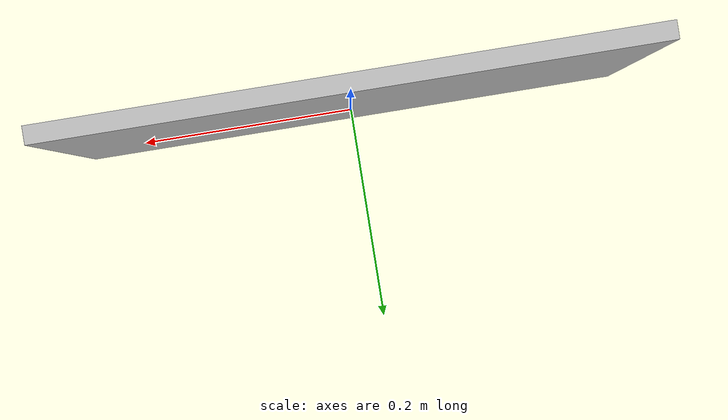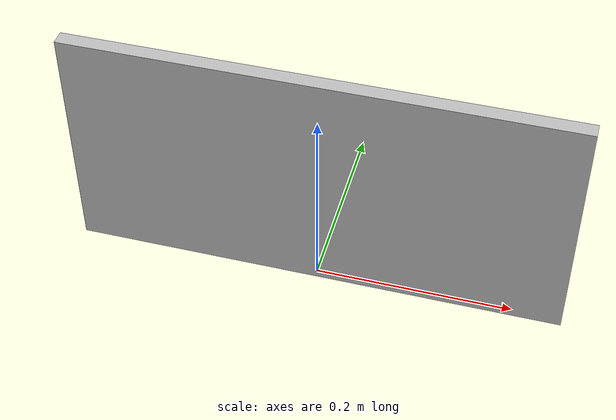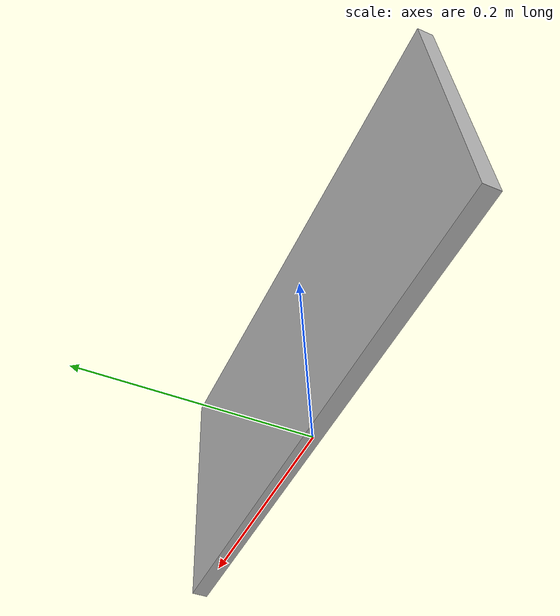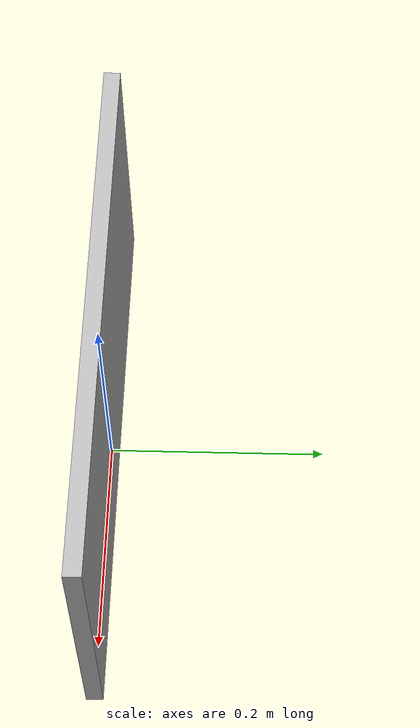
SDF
<?xml version="1.0" ?>
<sdf version="1.6">
  <model name="banana">
    <static>true</static>
    <link name="box">
      <pose>0 0 0.125 0 0 0</pose> <!-- x y z roll,pitc,yaw -->
      <collision name="collision">
        <geometry>
          <box>
            <size>0.5 0.015 0.25</size>
          </box>
        </geometry>
      </collision>
      <visual name="visual">
        <geometry>
          <box>
            <size>0.5 0.015 0.25</size>
          </box>
        </geometry>
        <material>
          <script>
            <uri>model://banana/materials/scripts</uri>
            <uri>model://banana/materials/textures</uri>
            <name>banana</name>
          </script>
        </material>
      </visual>
    </link>
  </model>
</sdf>
